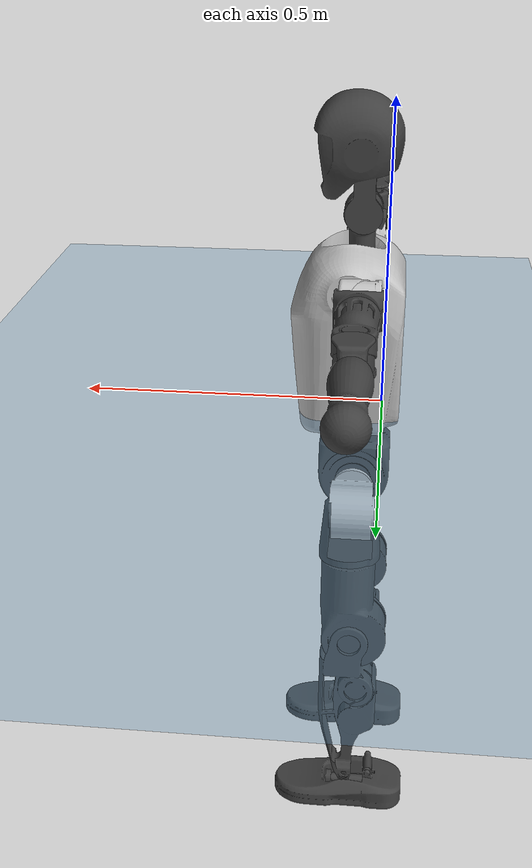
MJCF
<mujoco model="T1">
  <compiler angle="radian" assetdir="assets" balanceinertia="true" inertiafromgeom="false"/>

  <option timestep="0.005" density="1.2" viscosity="2e-05"/>

  <size nkey="1"/>

  <visual>
    <quality shadowsize="8192"/>
    <map shadowclip="0.5"/>
  </visual>

  <default>
    <default class="/">
      <joint armature="0.01" damping="0.01" frictionloss="0.1"/>
      <geom contype="0" conaffinity="0" group="1" solref="-1000 -80"/>
      <site size="0.01 0.005 0.005" group="5"/>
      <general forcelimited="true" biastype="affine" gainprm="25" biasprm="0 -25 -0.6"/>
      <default class="t1">
        <geom rgba="0.25 0.25 0.25 1"/>
        <default class="visual">
          <geom type="mesh" group="2"/>
        </default>
        <default class="collision">
          <geom group="3"/>
        </default>
        <default class="foot">
          <geom size="0.1115 0.05 0.015" type="box" condim="6" group="4" priority="1" solimp="0.015 1 0.015"/>
        </default>
        <default class="reward_collision_sphere">
          <geom group="5" rgba="1 0 0 1"/>
        </default>
      </default>
    </default>
  </default>

  <asset>
    <texture type="skybox" colorspace="auto" name="//unnamed_texture_0" builtin="gradient" rgb1="0.95 0.95 0.95" rgb2="0.95 0.95 0.95" width="100" height="600"/>
    <texture type="2d" colorspace="auto" name="texplane" builtin="checker" rgb1="0.345 0.575 0.748" rgb2="0.345 0.575 0.748" markrgb="1 1 1" width="512" height="512"/>
    <material name="MatPlane" class="/" texture="texplane" texuniform="true" texrepeat="2 2" specular="0.9"/>
    <mesh name="Trunk" class="/" file="Trunk.stl"/>
    <mesh name="H1" class="/" file="H1.stl"/>
    <mesh name="H2" class="/" file="H2.stl"/>
    <mesh name="AL1" class="/" file="AL1.stl"/>
    <mesh name="AL2" class="/" file="AL2.stl"/>
    <mesh name="AL3" class="/" file="AL3.stl"/>
    <mesh name="left_hand_link" class="/" file="left_hand_link.stl"/>
    <mesh name="AR1" class="/" file="AR1.stl"/>
    <mesh name="AR2" class="/" file="AR2.stl"/>
    <mesh name="AR3" class="/" file="AR3.stl"/>
    <mesh name="right_hand_link" class="/" file="right_hand_link.stl"/>
    <mesh name="Waist" class="/" file="Waist.stl"/>
    <mesh name="Hip_Pitch_Left" class="/" file="Hip_Pitch_Left.stl"/>
    <mesh name="Hip_Roll_Left" class="/" file="Hip_Roll_Left.stl"/>
    <mesh name="Hip_Yaw_Left" class="/" file="Hip_Yaw_Left.stl"/>
    <mesh name="Shank_Left" class="/" file="Shank_Left.stl"/>
    <mesh name="Ankle_Cross_Left" class="/" file="Ankle_Cross_Left.stl"/>
    <mesh name="left_foot_link" class="/" file="left_foot_link.stl"/>
    <mesh name="Hip_Pitch_Right" class="/" file="Hip_Pitch_Right.stl"/>
    <mesh name="Hip_Roll_Right" class="/" file="Hip_Roll_Right.stl"/>
    <mesh name="Hip_Yaw_Right" class="/" file="Hip_Yaw_Right.stl"/>
    <mesh name="Shank_Right" class="/" file="Shank_Right.stl"/>
    <mesh name="Ankle_Cross_Right" class="/" file="Ankle_Cross_Right.stl"/>
    <mesh name="right_foot_link" class="/" file="right_foot_link.stl"/>
  </asset>

  <worldbody>
    <geom name="floor" class="/" size="100 100 0.125" type="plane" group="0" material="MatPlane"/>
    <light name="toplight_shadow" class="/" pos="0 0 5" dir="0.0990148 0.0990148 -0.990148" type="directional" ambient="0.04 0.04 0.04" diffuse="0.55 0.55 0.55" specular="0.12 0.12 0.12"/>
    <light name="toplight_fill" class="/" pos="0 0 5" dir="0.0990148 0.0990148 -0.990148" type="directional" castshadow="false" ambient="0.04 0.04 0.04" diffuse="0.3 0.3 0.3" specular="0.08 0.08 0.08"/>
    <body name="trunk" childclass="t1" pos="-3.81681e-05 0.000451213 0.000686868" quat="1 -0.000130683 0.000170301 6.71713e-05">
      <inertial pos="0.0391074 0.00237044 0.113222" quat="0.999964 -0.00581132 -0.00486793 0.00376712" mass="11.764" diaginertia="0.0154773 0.231962 0.0723204"/>
      <joint name="//unnamed_joint_0" type="free" armature="0" damping="0" frictionloss="0"/>
      <geom name="//unnamed_geom_1" class="visual" rgba="0.76 0.76 0.76 1" mesh="Trunk"/>
      <geom name="//unnamed_geom_2" class="collision" size="0.0750413 0.100055 0.150083" pos="0.0420926 0 0.126278" type="box"/>
      <geom name="//unnamed_geom_3" class="reward_collision_sphere" size="0.115063" pos="0.0420926 0 0.105232"/>
      <geom name="//unnamed_geom_4" class="reward_collision_sphere" size="0.0150083" pos="0.0420926 0.106062 0"/>
      <geom name="//unnamed_geom_5" class="reward_collision_sphere" size="0.0150083" pos="0.0420926 -0.106062 0"/>
      <geom name="//unnamed_geom_6" class="reward_collision_sphere" size="0.0150083" pos="0.0420926 0.133514 0.189417"/>
      <geom name="//unnamed_geom_7" class="reward_collision_sphere" size="0.0150083" pos="0.0420926 -0.133514 0.189417"/>
      <site name="imu" pos="-0.00511334 -0.00182611 -0.00514192" size="0.0100055"/>
      <camera name="track" pos="0 -2.49558 0" quat="0.707107 0.707107 0 0" mode="trackcom"/>
      <camera name="ego_camera" pos="0.0855883 0 0.441973" quat="-0.5 -0.5 0.5 0.5"/>
      <body name="H1" pos="0.0433472 -0.00277161 0.257881" quat="1 -3.73869e-05 1.29581e-05 -2.94783e-05">
        <inertial pos="-0.00097337 0.000779917 0.0613217" quat="0.757343 -0.0194947 -0.00389089 0.652714" mass="0.43008" diaginertia="3.98277e-05 0.000656415 0.000194334"/>
        <joint name="AAHead_yaw" pos="0 0 0" axis="0.000832542 0.000450212 1" range="-1.56822 1.5172" armature="0.00990203" damping="0.0216774" frictionloss="0.0872541"/>
        <geom name="//unnamed_geom_8" class="visual" mesh="H1"/>
        <body name="H2" pos="-0.00151035 0.000318498 0.0623123" quat="1 -0.000236726 7.22962e-05 -0.000142476">
          <inertial pos="0.00556607 -0.00135195 0.104544" quat="0.986951 0.116683 -0.0820984 -0.0746477" mass="0.637389" diaginertia="0.000345945 0.00587856 0.00229835"/>
          <joint name="Head_pitch" pos="0 0 0" axis="-0.00466995 -0.999985 -0.00284516" range="-1.23234 0.350326" armature="0.0101201" damping="0.0113312" frictionloss="0.0922227"/>
          <geom name="//unnamed_geom_9" class="visual" mesh="H2"/>
          <geom name="//unnamed_geom_10" class="collision" size="0.080044" pos="0.00701544 0 0.115755"/>
          <geom name="//unnamed_geom_11" class="reward_collision_sphere" size="0.0900495" pos="0.0140309 0 0.105232"/>
        </body>
      </body>
      <body name="AL1" pos="0.0397324 0.133463 0.230171" quat="0.999999 0.000142455 0.000535665 0.00142429">
        <inertial pos="-0.000468641 0.0556168 -0.000209205" quat="0.510497 0.502886 -0.49707 0.489306" mass="0.52506" diaginertia="0.000229792 0.00402749 0.000377364"/>
        <joint name="Left_Shoulder_Pitch" pos="0 0 0" axis="-5.98177e-05 1 5.95297e-05" stiffness="0.00439025" range="-3.33153 1.27061" armature="0.00999832" damping="0.0103735" frictionloss="0.0996799"/>
        <geom name="//unnamed_geom_12" class="visual" rgba="0.76 0.76 0.76 1" mesh="AL1"/>
        <body name="AL2" pos="0.000500734 0.0618794 -0.00148116" quat="1 0.000283899 0.000567959 -0.000293318">
          <inertial pos="0.00543494 0.0499503 0.00077652" quat="0.488889 0.521909 -0.482413 0.505842" mass="0.161232" diaginertia="6.87576e-05 0.00104761 0.000236303"/>
          <joint name="Left_Shoulder_Roll" pos="0 0 0" axis="-0.999994 -0.00248512 -0.00250769" stiffness="0.00120426" range="-1.57266 1.73518" armature="0.00936604" damping="0.0107425" frictionloss="0.10531"/>
          <geom name="//unnamed_geom_13" class="visual" mesh="AL2"/>
          <body name="AL3" pos="0.000496301 0.0784095 0.00160773" quat="1 3.19013e-05 2.64874e-05 -4.74958e-05">
            <inertial pos="-0.00287008 0.106902 -0.00140211" quat="0.707408 0.70676 0.0029349 -0.0074421" mass="1.08048" diaginertia="0.00228084 0.0394006 0.000815923"/>
            <joint name="Left_Elbow_Pitch" pos="0 0 0" axis="0.00149338 -0.999999 0.00035361" range="-2.28865 2.32251" armature="0.0105814" damping="0.0196746" frictionloss="0.0980425"/>
            <geom name="//unnamed_geom_14" class="visual" mesh="AL3"/>
            <geom name="//unnamed_geom_15" class="collision" size="0.0300165 0.0750413" pos="0 0.0623896 0" quat="0.707105 0.707108 0 0" type="cylinder"/>
            <geom name="//unnamed_geom_16" class="reward_collision_sphere" size="0.0360198"/>
            <body name="left_hand_link" pos="0.000504928 0.186652 -0.00209401" quat="1 0.00027382 -0.000230051 -0.000135377">
              <inertial pos="0.000250079 0.137326 0.000761796" quat="0.707337 0.706861 0.00411938 -0.00207888" mass="0.324731" diaginertia="0.00134647 0.024468 0.000279885"/>
              <joint name="Left_Elbow_Yaw" pos="0 0 0" axis="0.00681352 -0.00226617 0.999974" stiffness="0.00991788" range="-2.498 -0.0109592" armature="0.0102596" damping="0" frictionloss="0.111497"/>
              <geom name="//unnamed_geom_17" class="visual" mesh="left_hand_link"/>
              <geom name="//unnamed_geom_18" class="collision" size="0.0300165 0.0875482" pos="0 0.162213 0" quat="0.707105 0.707108 0 0" type="cylinder"/>
              <geom name="//unnamed_geom_19" class="reward_collision_sphere" size="0.0500275"/>
              <geom name="//unnamed_geom_20" class="reward_collision_sphere" size="0.0350193" pos="0 0.137257 0"/>
              <geom name="//unnamed_geom_21" class="reward_collision_sphere" size="0.0350193" pos="0 0.268275 0"/>
            </body>
          </body>
        </body>
      </body>
      <body name="AR1" pos="0.0388773 -0.132027 0.229261" quat="1 5.55399e-05 -0.000178128 0.000226694">
        <inertial pos="-0.00218717 -0.0563093 -0.00282666" quat="0.512204 0.489644 -0.509384 0.488286" mass="0.546199" diaginertia="0.000232019 0.0039207 0.000385305"/>
        <joint name="Right_Shoulder_Pitch" pos="0 0 0" axis="0.00035893 -0.999999 -0.00110892" stiffness="0.00727795" range="-1.2251 3.30382" armature="0.00991933" damping="0" frictionloss="0.0864838"/>
        <geom name="//unnamed_geom_22" class="visual" rgba="0.76 0.76 0.76 1" mesh="AR1"/>
        <body name="AR2" pos="-0.00196044 -0.0581282 0.000540095" quat="1 5.47926e-05 -3.07341e-05 -0.000125962">
          <inertial pos="0.00162795 -0.0499262 -0.000897811" quat="0.511262 0.479623 -0.510008 0.498463" mass="0.159303" diaginertia="6.86471e-05 0.00102956 0.000230464"/>
          <joint name="Right_Shoulder_Roll" pos="0 0 0" axis="-0.999995 -0.00288841 -0.00101291" stiffness="0.00695863" range="-1.73956 1.56751" armature="0.0100602" damping="0" frictionloss="0.094945"/>
          <geom name="//unnamed_geom_23" class="visual" mesh="AR2"/>
          <body name="AR3" pos="-0.0012594 -0.0747909 -5.41528e-05" quat="1 0.000385872 0.000177171 -0.000530169">
            <inertial pos="-0.00113154 -0.106393 0.000979503" quat="0.712346 0.701816 -0.00415026 -0.000134527" mass="1.03886" diaginertia="0.00222015 0.037951 0.000818972"/>
            <joint name="Right_Elbow_Pitch" pos="0 0 0" axis="0.00103184 0.999997 0.0021496" range="-2.25939 2.25038" armature="0.00995729" damping="0.00860578" frictionloss="0.0949719"/>
            <geom name="//unnamed_geom_24" class="visual" mesh="AR3"/>
            <geom name="//unnamed_geom_25" class="collision" size="0.0300165 0.0750413" pos="0 -0.0623896 0" quat="0.707105 0.707108 0 0" type="cylinder"/>
            <geom name="//unnamed_geom_26" class="reward_collision_sphere" size="0.0360198"/>
            <body name="right_hand_link" pos="-0.0015789 -0.181187 0.00230687" quat="1 -0.00070238 -0.000453997 -0.000175685">
              <inertial pos="-0.000215249 -0.134815 0.000392707" quat="0.708758 0.705439 0.00428181 7.24225e-05" mass="0.335451" diaginertia="0.00138412 0.024548 0.000279385"/>
              <joint name="Right_Elbow_Yaw" pos="0 0 0" axis="-0.000678213 0.000766361 0.999999" stiffness="0.000685038" range="0.0279214 2.43186" armature="0.00996557" damping="0.00861749" frictionloss="0.113631"/>
              <geom name="//unnamed_geom_27" class="visual" mesh="right_hand_link"/>
              <geom name="//unnamed_geom_28" class="collision" size="0.0300165 0.0875482" pos="0 -0.162213 0" quat="0.707105 0.707108 0 0" type="cylinder"/>
              <geom name="//unnamed_geom_29" class="reward_collision_sphere" size="0.0500275"/>
              <geom name="//unnamed_geom_30" class="reward_collision_sphere" size="0.0350193" pos="0 -0.137257 0"/>
              <geom name="//unnamed_geom_31" class="reward_collision_sphere" size="0.0350193" pos="0 -0.268275 0"/>
            </body>
          </body>
        </body>
      </body>
      <body name="Waist" pos="0.0417042 0.000685111 -0.123383" quat="1 2.96305e-05 -5.37989e-05 -6.68946e-05">
        <inertial pos="-0.00114115 -0.00155732 0.00664173" quat="0.983682 -0.000832078 -0.179881 0.00353951" mass="2.48331" diaginertia="0.000869943 0.0157116 0.00599628"/>
        <joint name="Waist" pos="0 0 0" axis="-0.00202599 0.00257857 0.999995" stiffness="0.00140368" range="-1.58884 1.56454" armature="0.0108472" damping="0.0175496" frictionloss="0.10114"/>
        <geom name="//unnamed_geom_32" class="visual" mesh="Waist"/>
        <body name="Hip_Pitch_Left" pos="-0.000598032 0.132165 -0.00197632" quat="1 0.000278764 -0.00019385 -1.38188e-05">
          <inertial pos="0.000374889 -0.00704804 -0.0174584" quat="0.974338 0.224428 0.0164842 0.00504794" mass="1.05587" diaginertia="0.000306468 0.00450185 0.00160828"/>
          <joint name="Left_Hip_Pitch" pos="0 0 0" axis="0.00134897 0.999996 0.00236468" stiffness="0.00171162" range="-1.80143 1.62517" armature="0.0113262" damping="0.0158689" frictionloss="0.0974787"/>
          <geom name="//unnamed_geom_33" class="visual" rgba="0.76 0.76 0.76 1" mesh="Hip_Pitch_Left"/>
          <body name="Hip_Roll_Left" pos="0.0024416 -0.00140085 -0.022963" quat="1 -9.63263e-05 -0.000142828 0.000238323">
            <inertial pos="0.000478815 -0.000103249 -0.0561967" quat="0.700934 -0.00523512 0.00428784 0.713194" mass="0.370145" diaginertia="0.000285365 0.00460018 0.000657717"/>
            <joint name="Left_Hip_Roll" pos="0 0 0" axis="-0.999943 0.000345285 0.0106711" stiffness="0.00843494" range="-1.56685 0.182151" armature="0.0113337" damping="0.0155469" frictionloss="0.0950098"/>
            <geom name="//unnamed_geom_34" class="visual" mesh="Hip_Roll_Left"/>
            <geom name="//unnamed_geom_35" class="reward_collision_sphere" size="0.0550303"/>
            <body name="Hip_Yaw_Left" pos="-0.00171041 -0.00126265 -0.0839408" quat="1 0.000150404 -0.000309602 0.000364058">
              <inertial pos="-0.00736149 -0.00114805 -0.0930616" quat="0.695869 -0.0329957 -0.0302251 0.716773" mass="2.18211" diaginertia="0.00434054 0.0735124 0.00331704"/>
              <joint name="Left_Hip_Yaw" pos="0 0 0" axis="-0.00328791 -0.00397151 -0.999987" stiffness="0.00346976" range="-1.02974 1.05931" armature="0.0100279" damping="0.00287084" frictionloss="0.101712"/>
              <geom name="//unnamed_geom_36" class="visual" mesh="Hip_Yaw_Left"/>
              <geom name="//unnamed_geom_37" class="collision" size="0.0500275 0.080044" type="cylinder"/>
              <body name="Shank_Left" pos="-0.00695213 -6.26291e-05 -0.142074" quat="1 1.45672e-05 2.55332e-05 2.49962e-06">
                <inertial pos="-0.00328632 0.00295429 -0.128291" quat="0.997536 0.00189111 -0.0241394 0.0658442" mass="1.66533" diaginertia="0.0058385 0.104393 0.00235003"/>
                <joint name="Left_Knee_Pitch" pos="0 0 0" axis="-0.00294572 0.999986 -0.00433696" range="0.0065258 2.33581" armature="0.0100744" damping="0.0129894" frictionloss="0.105525"/>
                <geom name="//unnamed_geom_38" class="visual" mesh="Shank_Left"/>
                <geom name="//unnamed_geom_39" class="collision" size="0.0500275 0.0750413" pos="0 0 -0.126278" type="cylinder"/>
                <geom name="//unnamed_geom_40" class="reward_collision_sphere" size="0.0650358"/>
                <body name="Ankle_Cross_Left" pos="-0.000845616 -0.000407214 -0.292491" quat="1 -0.000116726 -0.000154674 -0.000104098">
                  <inertial pos="-0.00254023 0.00215095 -0.00751513" quat="0.440423 0.559107 0.550419 0.436425" mass="0.0755029" diaginertia="5.10111e-06 7.6431e-05 1.46797e-05"/>
                  <joint name="Left_Ankle_Pitch" pos="0 0 0" axis="-0.000128294 1 -3.90873e-05" range="-0.815198 0.330871" armature="0.0097071" damping="0.013929" frictionloss="0.0957831"/>
                  <geom name="//unnamed_geom_41" class="visual" mesh="Ankle_Cross_Left"/>
                  <body name="left_foot_link" pos="0.000810877 -0.00181366 -0.0104628" quat="1 6.39341e-06 -6.72574e-05 -3.61051e-05">
                    <inertial pos="-0.0023926 -0.000182864 -0.0119973" quat="0.00241472 0.619824 -0.0032025 0.784731" mass="0.666545" diaginertia="0.000428836 0.00707432 0.00281936"/>
                    <joint name="Left_Ankle_Roll" pos="0 0 0" axis="-1 -0.000214285 0.000417211" range="-0.429932 0.440594" armature="0.0101591" damping="0.0149961" frictionloss="0.0995558"/>
                    <geom name="//unnamed_geom_42" class="visual" mesh="left_foot_link"/>
                    <geom name="left_foot" class="foot" size="0.104741 0.0482439 0.0152108" pos="0.00701544 0 -0.0157847"/>
                    <geom name="//unnamed_geom_44" class="reward_collision_sphere" size="0.0520286" pos="0.00701544 0 -0.0157847"/>
                    <geom name="//unnamed_geom_45" class="reward_collision_sphere" size="0.0300165" pos="0.0666466 -0.0286992 -0.0157847"/>
                    <geom name="//unnamed_geom_46" class="reward_collision_sphere" size="0.0300165" pos="-0.0491081 -0.0286992 -0.0157847"/>
                    <site name="left_foot" class="foot" pos="0.00701544 0 -0.0157847" size="0.0100055"/>
                  </body>
                </body>
              </body>
            </body>
          </body>
        </body>
        <body name="Hip_Pitch_Right" pos="-0.000222329 -0.13306 0.000364746" quat="0.999999 0.000973227 0.000209712 -0.000481765">
          <inertial pos="-0.00205013 0.0102088 -0.0161949" quat="0.974291 -0.224768 0.0152808 -0.00154469" mass="1.04512" diaginertia="0.000314209 0.00458387 0.00159612"/>
          <joint name="Right_Hip_Pitch" pos="0 0 0" axis="-0.00203138 -0.999997 0.00104579" range="-1.57016 1.74562" armature="0.00914478" damping="0.010563" frictionloss="0.0988821"/>
          <geom name="//unnamed_geom_47" class="visual" rgba="0.76 0.76 0.76 1" mesh="Hip_Pitch_Right"/>
          <body name="Hip_Roll_Right" pos="0.00224067 0.000646309 -0.0231938" quat="1 -0.000166293 -0.000364904 -0.000351974">
            <inertial pos="0.00112329 -0.000788492 -0.0548566" quat="0.7039 0.00594332 -0.00169098 0.710272" mass="0.388957" diaginertia="0.00029714 0.00475017 0.000668235"/>
            <joint name="Right_Hip_Roll" pos="0 0 0" axis="-0.999991 0.00127731 -0.00395158" stiffness="0.000468145" range="-0.149503 1.59383" armature="0.0101058" damping="0.00946606" frictionloss="0.103754"/>
            <geom name="//unnamed_geom_48" class="visual" mesh="Hip_Roll_Right"/>
            <geom name="//unnamed_geom_49" class="reward_collision_sphere" size="0.0550303"/>
            <body name="Hip_Yaw_Right" pos="0.000489622 0.000946949 -0.0873301" quat="1 0.000197745 0.000489991 -0.000213933">
              <inertial pos="-0.0044596 -0.00124848 -0.0966566" quat="0.713718 -0.0303504 -0.0307439 0.699099" mass="2.11899" diaginertia="0.00435198 0.0767333 0.0032556"/>
              <joint name="Right_Hip_Yaw" pos="0 0 0" axis="-0.0135056 -0.00661718 -0.999887" stiffness="0.0028931" range="-1.01445 0.986976" armature="0.0112751" damping="0" frictionloss="0.100636"/>
              <geom name="//unnamed_geom_50" class="visual" mesh="Hip_Yaw_Right"/>
              <geom name="//unnamed_geom_51" class="collision" size="0.0500275 0.080044" type="cylinder"/>
              <body name="Shank_Right" pos="-0.00961114 -0.000410385 -0.139019" quat="1 0.000361776 -0.000314638 0.00023472">
                <inertial pos="-0.00387339 -0.00104693 -0.131435" quat="0.999229 -0.00026011 -0.0242254 -0.0308815" mass="1.85276" diaginertia="0.006247 0.107812 0.00260135"/>
                <joint name="Right_Knee_Pitch" pos="0 0 0" axis="0.00609231 -0.999981 -0.000305622" stiffness="0.00162935" range="-2.2866 -0.0101454" armature="0.0113097" damping="0.0155437" frictionloss="0.0990998"/>
                <geom name="//unnamed_geom_52" class="visual" mesh="Shank_Right"/>
                <geom name="//unnamed_geom_53" class="collision" size="0.0500275 0.0750413" pos="0 0 -0.126278" type="cylinder"/>
                <geom name="//unnamed_geom_54" class="reward_collision_sphere" size="0.0650358"/>
                <body name="Ankle_Cross_Right" pos="-0.000658439 -0.00142627 -0.295505" quat="1 2.31427e-05 4.66052e-05 0.00029097">
                  <inertial pos="-0.00256314 -0.00124281 -0.00847278" quat="0.443065 0.551797 0.551854 0.441215" mass="0.073413" diaginertia="5.06942e-06 7.98094e-05 1.47658e-05"/>
                  <joint name="Right_Ankle_Pitch" pos="0 0 0" axis="-0.00224465 -0.999994 -0.00260686" range="-0.401433 0.816631" armature="0.0100692" damping="0.00739562" frictionloss="0.1054"/>
                  <geom name="//unnamed_geom_55" class="visual" mesh="Ankle_Cross_Right"/>
                  <body name="right_foot_link" pos="0.00281044 -0.000692006 -0.0138935" quat="1 -6.29242e-05 3.65338e-05 -3.68441e-05">
                    <inertial pos="-0.00276691 0.000849232 -0.00956365" quat="0.00125608 0.621557 -0.000297851 0.783368" mass="0.691029" diaginertia="0.000463309 0.0070653 0.00284845"/>
                    <joint name="Right_Ankle_Roll" pos="0 0 0" axis="-0.999976 0.00410595 -0.00561029" range="-0.492838 0.441144" armature="0.00980385" damping="0" frictionloss="0.0966295"/>
                    <geom name="//unnamed_geom_56" class="visual" mesh="right_foot_link"/>
                    <geom name="right_foot" class="foot" size="0.10348 0.0453854 0.0150234" pos="0.00701544 0 -0.0157847"/>
                    <geom name="//unnamed_geom_58" class="reward_collision_sphere" size="0.040022"/>
                    <geom name="//unnamed_geom_59" class="reward_collision_sphere" size="0.0300165" pos="0.00701544 0 -0.0157847"/>
                    <geom name="//unnamed_geom_60" class="reward_collision_sphere" size="0.0300165" pos="0.0666466 0.0286992 -0.0157847"/>
                    <geom name="//unnamed_geom_61" class="reward_collision_sphere" size="0.0300165" pos="-0.0491081 0.0286992 -0.0157847"/>
                    <site name="right_foot" class="foot" pos="0.00701544 0 -0.0157847" size="0.0100055"/>
                  </body>
                </body>
              </body>
            </body>
          </body>
        </body>
      </body>
    </body>
  </worldbody>

  <contact>
    <pair class="/" geom1="floor" geom2="left_foot" name="//unnamed_contact_0"/>
    <pair class="/" geom1="floor" geom2="right_foot" name="//unnamed_contact_1"/>
  </contact>

  <actuator>
    <general name="AAHead_yaw" class="/" joint="AAHead_yaw" forcerange="-6.75582 6.75582" gainprm="23.6855" biasprm="0 -23.6855 -0.596471"/>
    <general name="Head_pitch" class="/" joint="Head_pitch" forcerange="-6.96181 6.96181" gainprm="23.6855" biasprm="0 -23.6855 -0.596471"/>
    <general name="Left_Shoulder_Pitch" class="/" joint="Left_Shoulder_Pitch" forcerange="-17.1101 17.1101" gainprm="23.6855" biasprm="0 -23.6855 -0.596471"/>
    <general name="Left_Shoulder_Roll" class="/" joint="Left_Shoulder_Roll" forcerange="-18.4063 18.4063" gainprm="23.6855" biasprm="0 -23.6855 -0.596471"/>
    <general name="Left_Elbow_Pitch" class="/" joint="Left_Elbow_Pitch" forcerange="-18.1824 18.1824" gainprm="23.6855" biasprm="0 -23.6855 -0.596471"/>
    <general name="Left_Elbow_Yaw" class="/" joint="Left_Elbow_Yaw" forcerange="-18.6687 18.6687" gainprm="23.6855" biasprm="0 -23.6855 -0.596471"/>
    <general name="Right_Shoulder_Pitch" class="/" joint="Right_Shoulder_Pitch" forcerange="-17.6748 17.6748" gainprm="23.6855" biasprm="0 -23.6855 -0.596471"/>
    <general name="Right_Shoulder_Roll" class="/" joint="Right_Shoulder_Roll" forcerange="-17.4062 17.4062" gainprm="23.6855" biasprm="0 -23.6855 -0.596471"/>
    <general name="Right_Elbow_Pitch" class="/" joint="Right_Elbow_Pitch" forcerange="-19.8534 19.8534" gainprm="23.6855" biasprm="0 -23.6855 -0.596471"/>
    <general name="Right_Elbow_Yaw" class="/" joint="Right_Elbow_Yaw" forcerange="-17.4754 17.4754" gainprm="23.6855" biasprm="0 -23.6855 -0.596471"/>
    <general name="Waist" class="/" joint="Waist" forcerange="-29.794 29.794" gainprm="23.6855" biasprm="0 -23.6855 -0.596471"/>
    <general name="Left_Hip_Pitch" class="/" joint="Left_Hip_Pitch" forcerange="-45.8256 45.8256" gainprm="23.6855" biasprm="0 -23.6855 -0.596471"/>
    <general name="Left_Hip_Roll" class="/" joint="Left_Hip_Roll" forcerange="-32.4769 32.4769" gainprm="23.6855" biasprm="0 -23.6855 -0.596471"/>
    <general name="Left_Hip_Yaw" class="/" joint="Left_Hip_Yaw" forcerange="-27.3341 27.3341" gainprm="23.6855" biasprm="0 -23.6855 -0.596471"/>
    <general name="Left_Knee_Pitch" class="/" joint="Left_Knee_Pitch" forcerange="-58.1994 58.1994" gainprm="23.6855" biasprm="0 -23.6855 -0.596471"/>
    <general name="Left_Ankle_Pitch" class="/" joint="Left_Ankle_Pitch" forcerange="-20.0619 20.0619" gainprm="23.6855" biasprm="0 -23.6855 -0.596471"/>
    <general name="Left_Ankle_Roll" class="/" joint="Left_Ankle_Roll" forcerange="-16.4841 16.4841" gainprm="23.6855" biasprm="0 -23.6855 -0.596471"/>
    <general name="Right_Hip_Pitch" class="/" joint="Right_Hip_Pitch" forcerange="-45.1049 45.1049" gainprm="23.6855" biasprm="0 -23.6855 -0.596471"/>
    <general name="Right_Hip_Roll" class="/" joint="Right_Hip_Roll" forcerange="-30.0939 30.0939" gainprm="23.6855" biasprm="0 -23.6855 -0.596471"/>
    <general name="Right_Hip_Yaw" class="/" joint="Right_Hip_Yaw" forcerange="-33.1138 33.1138" gainprm="23.6855" biasprm="0 -23.6855 -0.596471"/>
    <general name="Right_Knee_Pitch" class="/" joint="Right_Knee_Pitch" forcerange="-59.7933 59.7933" gainprm="23.6855" biasprm="0 -23.6855 -0.596471"/>
    <general name="Right_Ankle_Pitch" class="/" joint="Right_Ankle_Pitch" forcerange="-20.8134 20.8134" gainprm="23.6855" biasprm="0 -23.6855 -0.596471"/>
    <general name="Right_Ankle_Roll" class="/" joint="Right_Ankle_Roll" forcerange="-14.3442 14.3442" gainprm="23.6855" biasprm="0 -23.6855 -0.596471"/>
  </actuator>

  <sensor>
    <gyro site="imu" name="imu_angular_velocity"/>
    <velocimeter site="imu" name="imu_linear_velocity"/>
    <framelinvel objtype="site" objname="left_foot" name="left_foot_global_linear_velocity"/>
    <framelinvel objtype="site" objname="right_foot" name="right_foot_global_linear_velocity"/>
  </sensor>

  <keyframe>
    <key name="home" qpos="0 0 0.6385 1 0 0 0 0 0 0 1.4 0 -0.4 0 -1.4 0 0.4 0 -0.4 0 0 0.8 -0.4 0 0.4 0 0 -0.8 0.4 0"/>
  </keyframe>
</mujoco>
